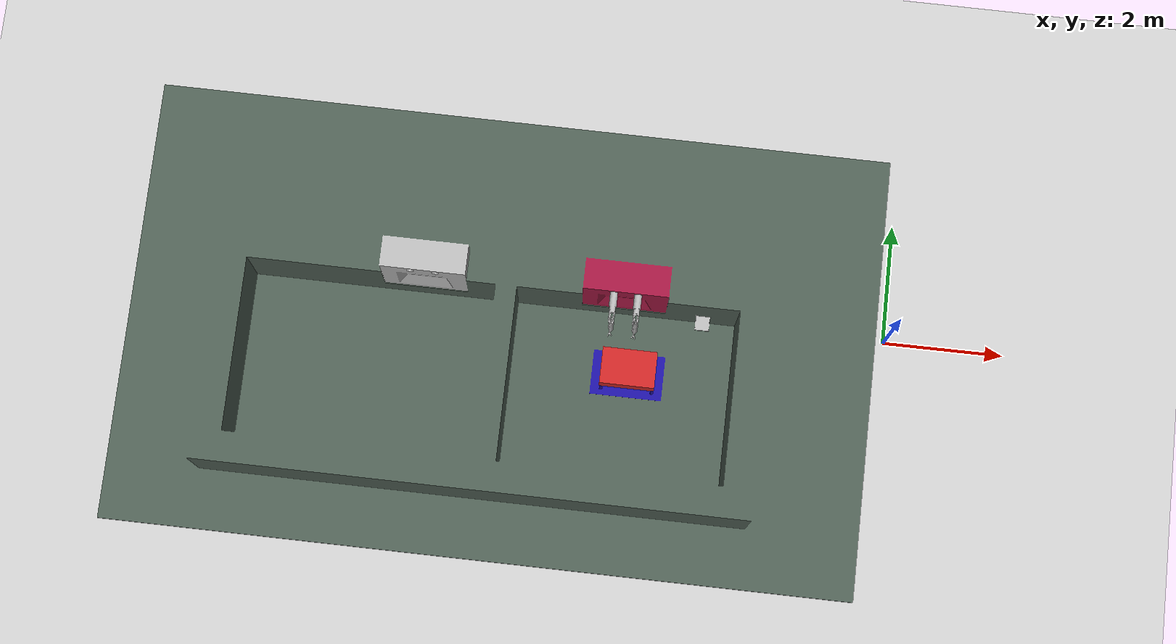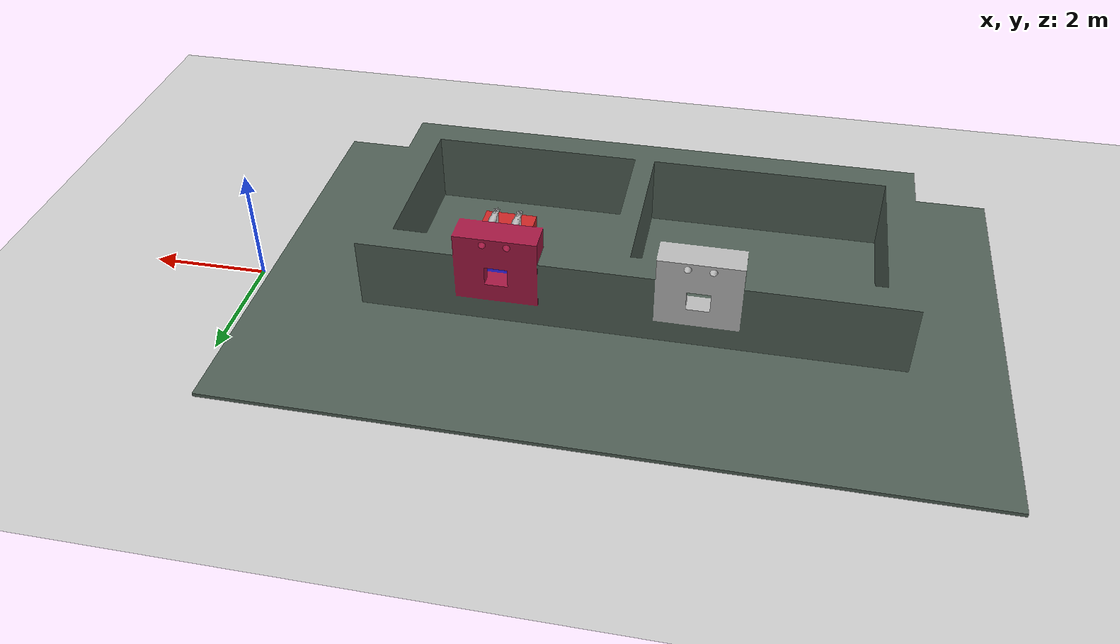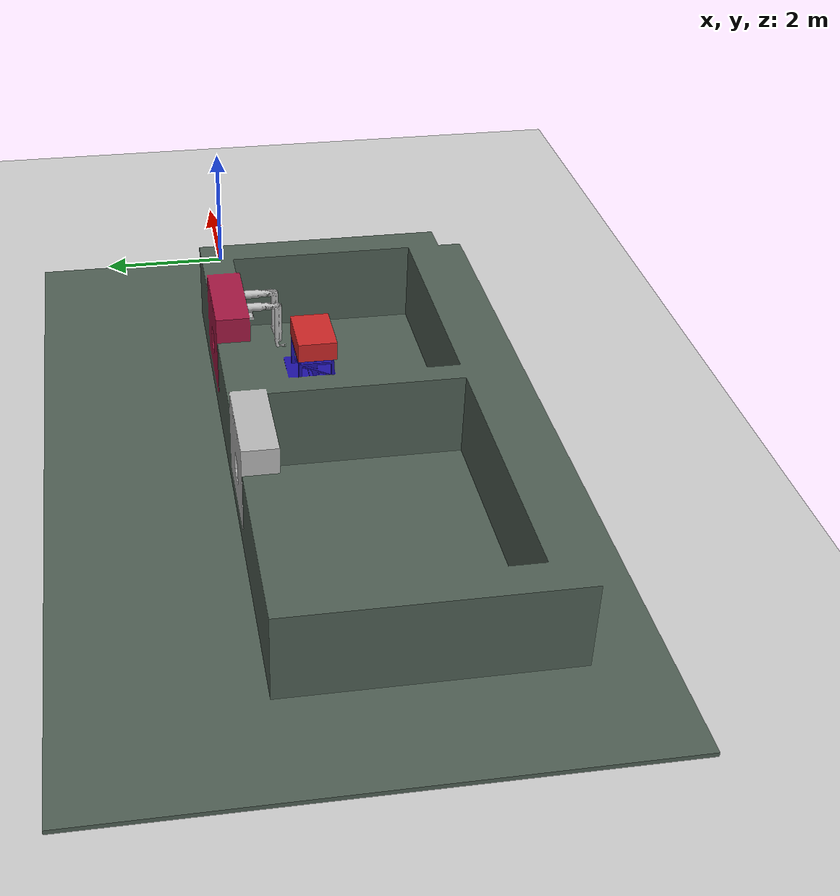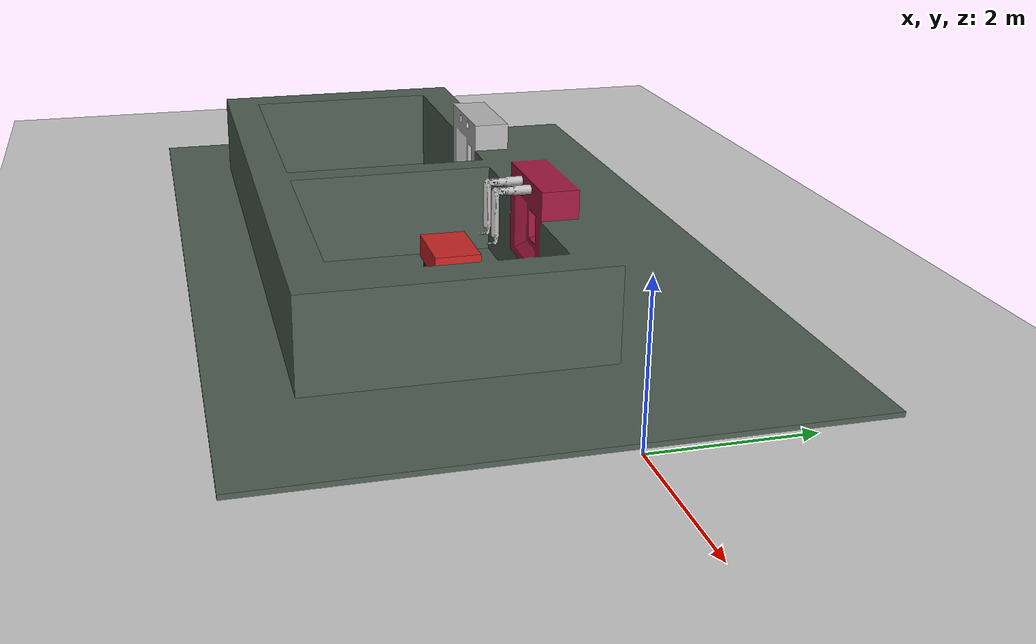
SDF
<?xml version="1.0" ?>
<sdf version="1.4">
  <world name="default">
    <include>
      <uri>model://ground_plane</uri>
    </include>
    <include>
      <uri>model://sun</uri>
    </include>
    <include>
      <uri>model://Hotcell_with_manipulator</uri>
      <pose>-2.0 0 -0.5 0 0 0</pose>
    </include>
  </world>
</sdf>

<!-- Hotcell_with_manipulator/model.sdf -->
<sdf version="1.4">
  <model name="Hotcell_Manipulator">
    <static>true</static>

    <link name="link_hotcell">
        <!--> Not necessary to declare inertia as the body is static<-->
      <collision name="collision_hotcell">
        <pose>0 0 0.05 0 0 0</pose>
        <geometry>
          <mesh>
            <uri>model://Hotcell/meshes/Hotcell.dae </uri>
            <scale>5.0 5.0 5.0</scale>
          </mesh>
        </geometry>
      </collision>
      <visual name="visual_hotcell">
        <pose>0 0 0.05 0 0 0</pose>
        <geometry>
          <mesh>
            <uri>model://Hotcell/meshes/Hotcell.dae </uri>
            <scale>5.0 5.0 5.0</scale>
          </mesh>
        </geometry>
      </visual>
    </link>
    <link name="link_manipulator_1">
        <!--> Not necessary to declare inertia as the body is static<-->

      <collision name="collision_man1">
        <pose>-2.26 -0.15 0.725 0 0 0</pose>
        <geometry>
          <mesh>
            <uri>model://MT200_nuc_manipulator/meshes/Manipulator.dae</uri>
            <scale>0.50 0.5 0.5</scale>
          </mesh>
        </geometry>
      </collision>
      <visual name="visual_man1">
        <pose>-2.26 -0.15 0.725 0 0 0</pose>
        <geometry>
          <mesh>
            <uri>model://MT200_nuc_manipulator/meshes/Manipulator.dae</uri>
            <scale>0.50 0.5 0.5</scale>
          </mesh>
        </geometry>
      </visual>
    </link>
     <link name="link_manipulator_2">
        <!--> Not necessary to declare inertia as the body is static<-->

      <collision name="collision_man2">
        <pose>-2.65 -0.15 0.725 0 0 0</pose>
        <geometry>
          <mesh>
            <uri>model://MT200_nuc_manipulator/meshes/Manipulator.dae</uri>
            <scale>0.50 0.5 0.5</scale>
          </mesh>
        </geometry>
      </collision>
      <visual name="visual_man2">
        <pose>-2.65 -0.15 0.725 0 0 0</pose>
        <geometry>
          <mesh>
            <uri>model://MT200_nuc_manipulator/meshes/Manipulator.dae</uri>
            <scale>0.50 0.5 0.5</scale>
          </mesh>
        </geometry>
      </visual>
    </link>

    <link name="manipable_box">

      <collision name="box_coll">
        <pose>-2.2 -1.05 1.1 0 0 0</pose>
        <geometry>
          <box>
            <size>0.9 0.60 0.2</size>
          </box>
        </geometry>
      </collision>
      <visual name="box_visual">
        <pose>-2.2 -1.05 1.25 0 0 0</pose>
        <geometry>
          <box>
            <size>0.9 0.60 0.3</size>
          </box>
        </geometry>
        <material>
          <script>
            <uri>file://media/materials/scripts/gazebo.material</uri>
            <name>Gazebo/Red</name>
          </script>
        </material>
      </visual>
    </link>
  </model>
</sdf>
